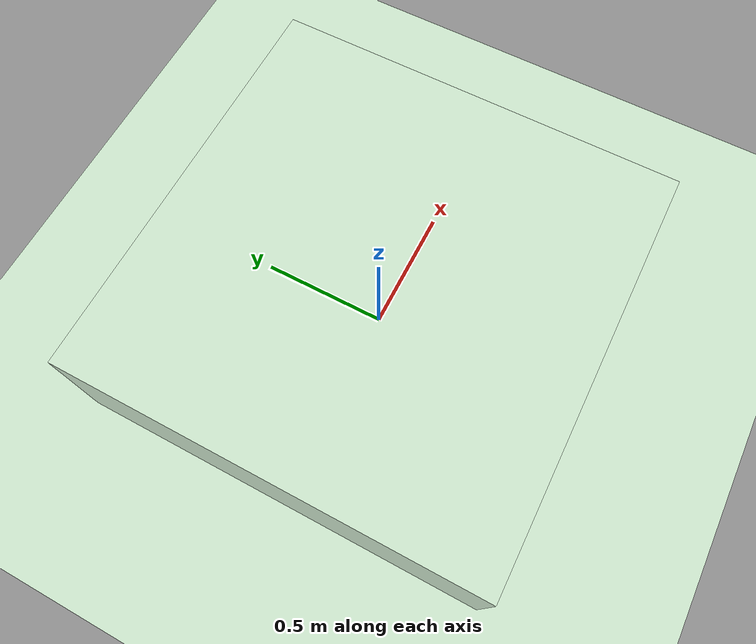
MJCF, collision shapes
<?xml version="1.0" encoding="utf-8"?>
<mujoco>
    <compiler angle="radian" coordinate="local"/>
    <option timestep="0.002" iterations="20" apirate="200">
        <flag warmstart="enable"/>
    </option>

    <size njmax="500" nconmax="100" nuser_jnt="1" nuser_site="1" nuser_tendon="1" nuser_sensor="1" nuser_actuator="16"
          nstack="600000"/>

    <visual>
        <map fogstart="3" fogend="5" force="0.1"></map>
        <quality shadowsize="4096"></quality>
    </visual>

    <default>
        <default class="robot0:asset_class">
            <geom friction="1 0.005 0.001" condim="4" margin="0.0005" contype="1" conaffinity="1"></geom>
            <joint limited="true" damping="0.1" armature="0.001" margin="0.01" frictionloss="0.001"></joint>
            <site size="0.005" rgba="0.4 0.9 0.4 1"></site>
            <general ctrllimited="true" forcelimited="true"></general>
        </default>
        <default class="robot0:D_Touch">
            <site type="box" size="0.009 0.004 0.013" pos="0 -0.004 0.018" rgba="0.8 0.8 0.8 0.15" group="4"></site>
        </default>
        <default class="robot0:DC_Hand">
            <geom material="robot0:MatColl" contype="1" conaffinity="0" group="2"></geom>
        </default>
        <default class="robot0:D_Vizual">
            <geom material="robot0:MatViz" contype="0" conaffinity="0" group="1" type="mesh"></geom>
        </default>
        <default class="robot0:free">
            <joint type="free" damping="0" armature="0" limited="false"></joint>
        </default>
        <default class="robot1:asset_class">
            <geom contype="0" conaffinity="0"></geom>
        </default>
        <default class="robot1:DC_Hand">
            <geom material="robot1:MatColl" contype="0" conaffinity="0" group="2"></geom>
        </default>
        <default class="robot1:D_Vizual">
            <geom material="robot1:MatViz" contype="0" conaffinity="0" group="1" type="mesh"></geom>
        </default>
        <default class="robot1:free">
            <joint type="free" damping="0" armature="0" limited="false"></joint>
        </default>
        <default class="robot2:asset_class">
            <geom contype="0" conaffinity="0"></geom>
        </default>
        <default class="robot2:DC_Hand">
            <geom material="robot2:MatColl" contype="0" conaffinity="0" group="2"></geom>
        </default>
        <default class="robot2:D_Vizual">
            <geom material="robot2:MatViz" contype="0" conaffinity="0" group="1" type="mesh"></geom>
        </default>
        <default class="robot2:free">
            <joint type="free" damping="0" armature="0" limited="false"></joint>
        </default>
    </default>

    <contact>
        <pair geom1="robot0:C_FF1" geom2="robot0:C_TH1" condim="1"></pair>
        <pair geom1="robot0:C_FF2" geom2="robot0:C_TH1" condim="1"></pair>
        <pair geom1="robot0:C_FF3" geom2="robot0:C_TH1" condim="1"></pair>
        <pair geom1="robot0:C_MF3" geom2="robot0:C_TH1" condim="1"></pair>
        <pair geom1="robot0:C_MF1" geom2="robot0:C_TH1" condim="1"></pair>
        <pair geom1="robot0:C_RF1" geom2="robot0:C_TH1" condim="1"></pair>
        <pair geom1="robot0:C_LF1" geom2="robot0:C_TH1" condim="1"></pair>
        <pair geom1="robot0:C_palm0" geom2="robot0:C_TH1" condim="1"></pair>
        <pair geom1="robot0:C_MF1" geom2="robot0:C_FF1" condim="1"></pair>
        <pair geom1="robot0:C_RF1" geom2="robot0:C_MF1" condim="1"></pair>
        <pair geom1="robot0:C_LF1" geom2="robot0:C_RF1" condim="1"></pair>
        <pair geom1="robot0:C_MF3" geom2="robot0:C_FF3" condim="1"></pair>
        <pair geom1="robot0:C_RF3" geom2="robot0:C_MF3" condim="1"></pair>
        <pair geom1="robot0:C_LF3" geom2="robot0:C_RF3" condim="1"></pair>
        <pair geom1="robot0:C_LF1" geom2="robot0:C_RF1" condim="1"></pair>
        <pair geom1="robot0:C_LF1" geom2="robot0:C_MF1" condim="1"></pair>
        <pair geom1="robot0:C_LF1" geom2="robot0:C_RF2" condim="1"></pair>
        <pair geom1="robot0:C_LF2" geom2="robot0:C_RF1" condim="1"></pair>
        <pair geom1="robot0:C_LF2" geom2="robot0:C_RF2" condim="1"></pair>
    </contact>

    <actuator>
        <motor gear="1" name="robot0:A_slide0" joint="robot0:slide0"></motor>
        <motor gear="1" name="robot0:A_slide1" joint="robot0:slide1"></motor>
        <motor gear="1" name="robot0:A_slide2" joint="robot0:slide2"></motor>
        <motor gear="1" name="robot0:A_WRJ0" user="2036" joint="robot0:WRJ0"></motor>
        <motor gear="1" name="robot0:A_WRJ1" user="2038" joint="robot0:WRJ1"></motor>
        <motor gear="1" name="robot0:A_WRJ2" user="1984" joint="robot0:WRJ2"></motor>
        <motor gear="1" name="robot0:A_FFJ3y" user="2004" joint="robot0:FFJ3y"></motor>
        <motor gear="1" name="robot0:A_FFJ3z" user="2004" joint="robot0:FFJ3z"></motor>
        <motor gear="1" name="robot0:A_FFJ2z" user="2004" joint="robot0:FFJ2z"></motor>
        <motor gear="1" name="robot0:A_FFJ1z" user="2004" joint="robot0:FFJ1z"></motor>
        <motor gear="1" name="robot0:A_MFJ3y" user="2004" joint="robot0:MFJ3y"></motor>
        <motor gear="1" name="robot0:A_MFJ3z" user="2004" joint="robot0:MFJ3z"></motor>
        <motor gear="1" name="robot0:A_MFJ2z" user="2004" joint="robot0:MFJ2z"></motor>
        <motor gear="1" name="robot0:A_MFJ1z" user="2004" joint="robot0:MFJ1z"></motor>
        <motor gear="1" name="robot0:A_LFJ3y" user="2004" joint="robot0:LFJ3y"></motor>
        <motor gear="1" name="robot0:A_LFJ3z" user="2004" joint="robot0:LFJ3z"></motor>
        <motor gear="1" name="robot0:A_LFJ2z" user="2004" joint="robot0:LFJ2z"></motor>
        <motor gear="1" name="robot0:A_LFJ1z" user="2004" joint="robot0:LFJ1z"></motor>
        <motor gear="1" name="robot0:A_RFJ3y" user="2004" joint="robot0:RFJ3y"></motor>
        <motor gear="1" name="robot0:A_RFJ3z" user="2004" joint="robot0:RFJ3z"></motor>
        <motor gear="1" name="robot0:A_RFJ2z" user="2004" joint="robot0:RFJ2z"></motor>
        <motor gear="1" name="robot0:A_RFJ1z" user="2004" joint="robot0:RFJ1z"></motor>
        <motor gear="1" name="robot0:A_THJ3x" user="2004" joint="robot0:THJ3x"></motor>
        <motor gear="1" name="robot0:A_THJ3y" user="2004" joint="robot0:THJ3y"></motor>
        <motor gear="1" name="robot0:A_THJ3z" user="2004" joint="robot0:THJ3z"></motor>
        <motor gear="1" name="robot0:A_THJ2x" user="2004" joint="robot0:THJ2x"></motor>
        <motor gear="1" name="robot0:A_THJ2y" user="2004" joint="robot0:THJ2y"></motor>
        <motor gear="1" name="robot0:A_THJ2z" user="2004" joint="robot0:THJ2z"></motor>
        <motor gear="1" name="robot0:A_THJ1y" user="2004" joint="robot0:THJ1y"></motor>

    </actuator>

    <asset>
        <texture type="skybox" builtin="gradient" rgb1="0.44 0.85 0.56" rgb2="0.46 0.87 0.58" width="32" height="32"/>

        <texture name="robot0:texplane" type="2d" builtin="checker" rgb1="0.2 0.3 0.4" rgb2="0.1 0.15 0.2" width="512"
                 height="512"/>
        <texture name="robot0:texgeom" type="cube" builtin="flat" mark="cross" width="127" height="127" rgb1="0.3 0.6 0.5"
                 rgb2="0.3 0.6 0.5" markrgb="0 0 0" random="0.01"/>

        <material name="robot0:MatGnd" reflectance="0.5" texture="robot0:texplane" texrepeat="1 1" texuniform="true"/>
        <material name="robot0:MatColl" specular="1" shininess="0.3" reflectance="0.5" rgba="0.4 0.5 0.6 1"/>
        <material name="robot0:MatViz" specular="0.75" shininess="0.1" reflectance="0.5" rgba="0.93 0.93 0.93 1"/>
        <material name="robot1:MatGnd" reflectance="0.5" texture="robot0:texplane" texrepeat="1 1" texuniform="true"/>
        <material name="robot1:MatColl" specular="1" shininess="0.3" reflectance="0.5" rgba="1.0 0.1 0.1 1"/>
        <material name="robot1:MatViz" specular="0.75" shininess="0.1" reflectance="0.5" rgba="1.0 0.1 0.1 1"/>
        <material name="robot2:MatGnd" reflectance="0.5" texture="robot0:texplane" texrepeat="1 1" texuniform="true"/>
        <material name="robot2:MatColl" specular="1" shininess="0.3" reflectance="0.5" rgba="0.1 0.1 1.0 1"/>
        <material name="robot2:MatViz" specular="0.75" shininess="0.1" reflectance="0.5" rgba="0.1 0.1 1.0 1"/>
        <material name="robot0:object" texture="robot0:texgeom" texuniform="false"/>
        <material name="floor_mat" specular="0" shininess="0.5" reflectance="0" rgba="0.2 0.2 0.2 0"/>
        <material name="MatPlane" reflectance="0.0" shininess="1" specular="1" texrepeat="60 60" texture="robot0:texplane"/>

        <mesh name="palm" file="../stls/manohand/palm_mean.stl"/>
        <mesh name="ffdist" file="../stls/manohand/ffdist_mean.stl"/>
        <mesh name="ffmiddle" file="../stls/manohand/ffmiddle_mean.stl"/>
        <mesh name="ffprox" file="../stls/manohand/ffprox_mean.stl"/>
        <mesh name="lfdist" file="../stls/manohand/lfdist_mean.stl"/>
        <mesh name="lfmiddle" file="../stls/manohand/lfmiddle_mean.stl"/>
        <mesh name="lfprox" file="../stls/manohand/lfprox_mean.stl"/>
        <mesh name="mfdist" file="../stls/manohand/mfdist_mean.stl"/>
        <mesh name="mfmiddle" file="../stls/manohand/mfmiddle_mean.stl"/>
        <mesh name="mfprox" file="../stls/manohand/mfprox_mean.stl"/>
        <mesh name="rfdist" file="../stls/manohand/rfdist_mean.stl"/>
        <mesh name="rfmiddle" file="../stls/manohand/rfmiddle_mean.stl"/>
        <mesh name="rfprox" file="../stls/manohand/rfprox_mean.stl"/>
        <mesh name="thdist" file="../stls/manohand/thdist_mean.stl"/>
        <mesh name="thmiddle" file="../stls/manohand/thmiddle_mean.stl"/>
        <mesh name="thprox" file="../stls/manohand/thprox_mean.stl"/>
    </asset>

    <worldbody>
        <geom conaffinity="1" condim="3" name="floor" pos="0 0 0" rgba="0.8 0.9 0.8 1" size="100 100 .2" type="plane" material="MatPlane"/>
        <body name="table">
            <geom name="C_Table" type="box" size="0.8 0.8 0.25" rgba="0.8 0.9 0.8 0.3" pos="0 0 0.25" condim="4" contype="1" conaffinity="0" />
        </body>
        <body name="handworld" pos="0 0 0" euler="0 0 0">
            <body name="palm" pos="0 0 0" euler="0 0 0" childclass="robot0:asset_class">
                <joint name="robot0:slide0" type="slide" pos="0 0 0" axis="1 0 0" range="-2.0 2.0" armature="0.005"></joint>
                <joint name="robot0:slide1" type="slide" pos="0 0 0" axis="0 1 0" range="-2.0 2.0" armature="0.005"></joint>
                <joint name="robot0:slide2" type="slide" pos="0 0 0" axis="0 0 1" range="0.2 2.0" armature="0.005"></joint>
                <joint name="robot0:WRJ0" type="hinge" pos="0 0 0" axis="1 0 0" range="-3.14 3.14" armature="0.005" user="1123"></joint>
                <joint name="robot0:WRJ1" type="hinge" pos="0 0 0" axis="0 1 0" range="-1.57 1.57" armature="0.005" user="1123"></joint>
                <joint name="robot0:WRJ2" type="hinge" pos="0 0 0" axis="0 0 1" range="-3.14 3.14" armature="0.005" user="1123"></joint>
                <inertial pos="-0.03 0 0" euler="0 0 0.2" mass="0.3" diaginertia="0.001 0.001 0.001"/>
                <geom class="robot0:D_Vizual" name="robot0:V_palm" mesh="palm"></geom>
                <geom class="robot0:DC_Hand" name="robot0:C_palm0" type="box" pos="-0.03 0 0" size="0.0439 0.0135 0.035" euler="0 0 0.2"></geom>
                <geom class="robot0:DC_Hand" name="robot0:C_palm1" type="capsule" euler="-2.61505 0.70030 -1.87000" pos="-0.01187 -0.00708 0.01218" size="0.015 0.01842"></geom>
                <body name="link_ff_pm" pos="-0.0880972 -0.00520036 0.020686">
                    <joint name="robot0:FFJ3y" type="hinge" pos="0 0 0" axis="0 1 0" range="-0.8 0.8" armature="0.005" user="1123"></joint>
                    <joint name="robot0:FFJ3z" type="hinge" pos="0 0 0" axis="0 0 1" range="0 1.57" armature="0.005" user="1123"></joint>
                    <inertial pos="-0.01633945  0.00200468  0.0011085" euler="2.0759187  1.43150624 1.94972864" mass="0.014" diaginertia="1e-05 1e-05 1e-05"></inertial>
                    <geom class="robot0:D_Vizual" name="robot0:V_FF3" mesh="ffprox"></geom>
                    <geom class="robot0:DC_Hand" name="robot0:C_FF3" type="capsule" pos="-0.01633945  0.00200468  0.0011085" size="0.009 0.0165" euler="2.0759187  1.43150624 1.94972864"></geom>
                    <body name="link_ff_md" pos="-0.0326789 0.00400935 0.00221706">
                        <inertial pos="-1.10779554e-02 -6.49210764e-04 -5.70546836e-05" euler="-1.48313839 1.51203433 -1.42475203" mass="0.012" diaginertia="1e-05 1e-05 1e-05"></inertial>
                        <joint name="robot0:FFJ2z" type="hinge" pos="0 0 0" axis="0 0 1" range="-0.5 1.57" armature="0.005" user="1123"></joint>
                        <geom class="robot0:D_Vizual" name="robot0:V_FF2" mesh="ffmiddle"></geom>
                        <geom class="robot0:DC_Hand" name="robot0:C_FF2" type="capsule" pos="-1.10779554e-02 -6.49210764e-04 -5.70546836e-05" size="0.0075 0.0111" euler="-1.48313839 1.51203433 -1.42475203"></geom>
                        <body name="link_ff_dd" pos="-0.0221559 -0.00129842 -0.000114109">
                            <inertial pos="-0.01163138  0.00035898  0.00202463" euler="2.96610898 1.39582282 2.93259132" mass="0.01" diaginertia="1e-05 1e-05 1e-05"></inertial>
                            <joint name="robot0:FFJ1z" type="hinge" pos="0 0 0" axis="0 0 1" range="0 1.57" armature="0.005" user="1123"></joint>
                            <geom class="robot0:D_Vizual" name="robot0:V_FF1" mesh="ffdist"></geom>
                            <geom class="robot0:DC_Hand" name="robot0:C_FF1" type="capsule" pos="-0.01163138  0.00035898  0.00202463" size="0.0075 0.0075" euler="2.96610898 1.39582282 2.93259132"></geom>
                        </body>
                    </body>
                </body>
                <body name="link_mf_pm" pos="-0.0946604 -0.00147896 -0.00335754">
                    <inertial pos="-0.01559134  0.00093066 -0.00279725" euler="0.32118629 1.38392244 0.26686409" mass="0.014" diaginertia="1e-05 1e-05 1e-05"></inertial>
                    <joint name="robot0:MFJ3y" type="hinge" pos="0 0 0" axis="0 1 0" range="-0.8 0.8" armature="0.005" user="1123"></joint>
                    <joint name="robot0:MFJ3z" type="hinge" pos="0 0 0" axis="0 0 1" range="0 1.57" armature="0.005" user="1123"></joint>
                    <geom class="robot0:D_Vizual" name="robot0:V_MF3" mesh="mfprox"></geom>
                    <geom class="robot0:DC_Hand" name="robot0:C_MF3" type="capsule" pos="-0.01559134  0.00093066 -0.00279725" size="0.009 0.0158675" euler="0.32118629 1.38392244 0.26686409"></geom>
                    <body name="link_mf_md" pos="-0.0311827 0.00186133 -0.00559451">
                        <inertial pos="-0.01145232 -0.00062605 -0.001972263" euler="-0.30736925 1.39204219 -0.25742004" mass="0.012" diaginertia="1e-05 1e-05 1e-05"></inertial>
                        <joint name="robot0:MFJ2z" type="hinge" pos="0 0 0" axis="0 0 1" range="0 1.57" armature="0.005" user="1123"></joint>
                        <geom class="robot0:D_Vizual" name="robot0:V_MF2" mesh="mfmiddle"></geom>
                        <geom class="robot0:DC_Hand" name="robot0:C_MF2" type="capsule" pos="-0.01145232 -0.00062605 -0.001972263" size="0.0075 0.01163" euler="-0.30736925 1.39204219 -0.25742004"></geom>
                        <body name="link_mf_dd" pos="-0.0229046 -0.0012521 -0.00394452">
                            <inertial pos="-0.01551503 -0.00070755 -0.00318577" euler="-0.21855015 1.36348088  -0.17760409" mass="0.01" diaginertia="1e-05 1e-05 1e-05"></inertial>
                            <joint name="robot0:MFJ1z" type="hinge" pos="0 0 0" axis="0 0 1" range="0 1.57" armature="0.005" user="1123"></joint>
                            <geom class="robot0:D_Vizual" name="robot0:V_MF1" mesh="mfdist"></geom>
                            <geom class="robot0:DC_Hand" name="robot0:C_MF1" type="capsule" pos="-0.01551503 -0.00070755 -0.00318577" size="0.0075 0.005" euler="-0.21855015 1.36348088  -0.17760409"></geom>
                        </body>
                    </body>
                </body>
                <body name="link_lf_pm" pos="-0.0687869 -0.00994033 -0.0432093">
                    <joint name="robot0:LFJ3y" type="hinge" pos="0 0 0" axis="0 1 0" range="-0.8 0.8" armature="0.005" user="1123"></joint>
                    <inertial pos="-8.50720331e-03  3.09124589e-05 -6.24939241e-03" euler="0.00494643 0.93721839 0.00250398" mass="0.07" diaginertia="0.0005 0.0005 0.0005"/>
                    <joint name="robot0:LFJ3z" type="hinge" pos="0 0 0" axis="0 0 1" range="0 1.57" armature="0.005" user="1123"></joint>
                    <geom class="robot0:D_Vizual" name="robot0:V_LF3" mesh="lfprox"></geom>
                    <geom class="robot0:DC_Hand" name="robot0:C_LF3" type="capsule" pos="-8.50720331e-03  3.09124589e-05 -6.24939241e-03" size="0.009 0.010555964" euler="0.00494643 0.93721839 0.00250398"></geom>
                    <body name="link_lf_md" pos="-0.0170144 6.18249e-05 -0.0124988">
                        <inertial pos="-0.00793345 -0.00034558 -0.00516596" euler="-0.06679566 0.99258405 -0.0361792" mass="0.06" diaginertia="0.0005 0.0005 0.0005"/>
                        <joint name="robot0:LFJ2z" type="hinge" pos="0 0 0" axis="0 0 1" range="0 1.57" armature="0.005" user="1123"></joint>
                        <geom class="robot0:D_Vizual" name="robot0:V_LF2" mesh="lfmiddle"></geom>
                        <geom class="robot0:DC_Hand" name="robot0:C_LF2" type="capsule" pos="-0.00793345 -0.00034558 -0.00516596" size="0.0075 0.009473446" euler="-0.06679566 0.99258405 -0.0361792"></geom>
                        <body name="link_lf_dd" pos="-0.0158669 -0.000691155 -0.0103319">
                            <inertial pos="-0.00977975  0.00129545 -0.00574058" euler="0.22194785 1.02909336 0.12582808" mass="0.05" diaginertia="0.0005 0.0005 0.0005"/>
                            <joint name="robot0:LFJ1z" type="hinge" pos="0 0 0" axis="0 0 1" range="0 1.57" armature="0.005" user="1123"></joint>
                            <geom class="robot0:D_Vizual" name="robot0:V_LF1" mesh="lfdist"></geom>
                            <geom class="robot0:DC_Hand" name="robot0:C_LF1" type="capsule" pos="-0.00977975  0.00129545 -0.00574058" size="0.0065 0.0035" euler="0.22194785 1.02909336 0.12582808"></geom>
                        </body>
                    </body>
                </body>
                <body name="link_rf_pm" pos="-0.0817355 -0.00395742 -0.0266732">
                    <joint name="robot0:RFJ3y" type="hinge" pos="0 0 0" axis="0 1 0" range="-0.8 0.8" armature="0.005" user="1123"></joint>
                    <inertial pos="-0.01415714  0.0010335  -0.00254927" euler="0.38516311 1.37888284 0.31878467" mass="0.014" diaginertia="1e-05 1e-05 1e-05"></inertial>
                    <joint name="robot0:RFJ3z" type="hinge" pos="0 0 0" axis="0 0 1" range="0 1.57" armature="0.005" user="1123"></joint>
                    <geom class="robot0:D_Vizual" name="robot0:V_RF3" mesh="rfprox"></geom>
                    <geom class="robot0:DC_Hand" name="robot0:C_RF3" type="capsule" pos="-0.01415714  0.0010335  -0.00254927" size="0.009 0.014421906" euler="0.38516311 1.37888284 0.31878467"></geom>
                    <body name="link_rf_md" pos="-0.0283143 0.00206701 -0.00509854">
                        <inertial pos="-0.01176025 -0.00084406 -0.00381691" euler="-0.21763357 1.24988512 -0.15729772" mass="0.012" diaginertia="1e-05 1e-05 1e-05"></inertial>
                        <joint name="robot0:RFJ2z" type="hinge" pos="0 0 0" axis="0 0 1" range="0 1.57" armature="0.005" user="1123"></joint>
                        <geom class="robot0:D_Vizual" name="robot0:V_RF2" mesh="rfmiddle"></geom>
                        <geom class="robot0:DC_Hand" name="robot0:C_RF2" type="capsule" pos="-0.01176025 -0.00084406 -0.00381691" size="0.0075 0.012392933" euler="-0.21763357 1.24988512 -0.15729772"></geom>
                        <body name="link_rf_dd" pos="-0.0235205 -0.00168811 -0.00763382">
                            <inertial pos="-0.01460212  0.00187106 -0.00404494" euler="0.43325752 1.27456581 0.32302802" mass="0.01" diaginertia="1e-05 1e-05 1e-05"></inertial>
                            <joint name="robot0:RFJ1z" type="hinge" pos="0 0 0" axis="0 0 1" range="0 1.57" armature="0.005" user="1123"></joint>
                            <geom class="robot0:D_Vizual" name="robot0:V_RF1" mesh="rfdist"></geom>
                            <geom class="robot0:DC_Hand" name="robot0:C_RF1" type="capsule" pos="-0.01460212  0.00187106 -0.00404494" size="0.0075 0.005" euler="0.43325752 1.27456581 0.32302802"></geom>
                        </body>
                    </body>
                </body>
                <body name="link_th_pm" pos="-0.0240897 -0.0155223 0.0258128">
                    <joint name="robot0:THJ3x" type="hinge" pos="0 0 0" axis="1 0 0" range="0 1.57" armature="0.005" user="1123"></joint>
                    <joint name="robot0:THJ3y" type="hinge" pos="0 0 0" axis="0 1 0" range="-0.8 0.8" armature="0.005" user="1123"></joint>
                    <inertial pos="-0.00981662  0.00044564  0.01184977" euler="3.10400265 0.69148607 3.03731965" mass="0.016" diaginertia="1e-05 1e-05 1e-05"></inertial>
                    <joint name="robot0:THJ3z" type="hinge" pos="0 0 0" axis="0 0 1" range="-0.25 0.25" armature="0.005" user="1123"></joint>
                    <geom class="robot0:D_Vizual" name="robot0:V_TH3" mesh="thprox"></geom>
                    <geom class="robot0:DC_Hand" name="robot0:C_TH3" type="capsule" pos="-0.00981662  0.00044564  0.01184977" size="0.01 0.015394214" euler="3.10400265 0.69148607 3.03731965"></geom>
                    <body name="link_th_md" pos="-0.0196332 0.000891286 0.0236995">
                        <joint name="robot0:THJ2x" type="hinge" pos="0 0 0" axis="1 0 0" range="-1 1" armature="0.005" user="1123"></joint>
                        <joint name="robot0:THJ2y" type="hinge" pos="0 0 0" axis="0 1 0" range="-0.5 0.5" armature="0.005" user="1123"></joint>
                        <inertial pos="-0.01110887 -0.00271648  0.00726206" euler="-2.78364168 0.96144328  -2.47379542" mass="0.014" diaginertia="1e-05 1e-05 1e-05"></inertial>
                        <joint name="robot0:THJ2z" type="hinge" pos="0 0 0" axis="0 0 1" range="-0.5 0.5" armature="0.005" user="1123"></joint>
                        <geom class="robot0:D_Vizual" name="robot0:V_TH2" mesh="thmiddle"></geom>
                        <geom class="robot0:DC_Hand" name="robot0:C_TH2" type="capsule" pos="-0.01110887 -0.00271648  0.00726206" size="0.01 0.013547092" euler="-2.78364168 0.96144328  -2.47379542"></geom>
                        <body name="link_th_dd" pos="-0.0222177 -0.00543297 0.0145241">
                            <joint name="robot0:THJ1y" type="hinge" pos="0 0 0" axis="0 1 0" range="-1 1" armature="0.005" user="1123"></joint>
                            <inertial pos="-0.01577465 -0.00326327  0.01024323" euler="-2.83317999 0.97259243  -2.56963586" mass="0.012" diaginertia="1e-05 1e-05 1e-05"></inertial>
                            <geom class="robot0:D_Vizual" name="robot0:V_TH1" mesh="thdist"></geom>
                            <geom class="robot0:DC_Hand" name="robot0:C_TH1" type="capsule" pos="-0.01577465 -0.00326327  0.01024323" size="0.01 0.01" euler="-2.83317999 0.97259243  -2.56963586"></geom>
                        </body>
                    </body>
                </body>
            </body>
        </body>
        <body name="handworld1" pos="0 0 0" euler="0 0 0">
            <body name="palm1" pos="0 0 0" euler="0 0 0" childclass="robot1:asset_class">
                <joint name="robot1:slide0" type="slide" pos="0 0 0" axis="1 0 0" range="-2.0 2.0" armature="0.005"></joint>
                <joint name="robot1:slide1" type="slide" pos="0 0 0" axis="0 1 0" range="-2.0 2.0" armature="0.005"></joint>
                <joint name="robot1:slide2" type="slide" pos="0 0 0" axis="0 0 1" range="0.2 2.0" armature="0.005"></joint>
                <joint name="robot1:WRJ0" type="hinge" pos="0 0 0" axis="1 0 0" range="-3.14 3.14" armature="0.005" user="1123"></joint>
                <joint name="robot1:WRJ1" type="hinge" pos="0 0 0" axis="0 1 0" range="-1.57 1.57" armature="0.005" user="1123"></joint>
                <joint name="robot1:WRJ2" type="hinge" pos="0 0 0" axis="0 0 1" range="-3.14 3.14" armature="0.005" user="1123"></joint>
                <inertial pos="-0.03 0 0" euler="0 0 0.2" mass="0.3" diaginertia="0.001 0.001 0.001"/>
                <geom class="robot1:D_Vizual" name="robot1:V_palm" mesh="palm"></geom>
                <geom class="robot1:DC_Hand" name="robot1:C_palm0" type="box" pos="-0.03 0 0" size="0.0439 0.0135 0.035" euler="0 0 0.2"></geom>
                <geom class="robot1:DC_Hand" name="robot1:C_palm1" type="capsule" euler="-2.61505 0.70030 -1.87000" pos="-0.01187 -0.00708 0.01218" size="0.015 0.01842"></geom>
                <body name="link_ff_pm1" pos="-0.0880972 -0.00520036 0.020686">
                    <joint name="robot1:FFJ3y" type="hinge" pos="0 0 0" axis="0 1 0" range="-0.8 0.8" armature="0.005" user="1123"></joint>
                    <joint name="robot1:FFJ3z" type="hinge" pos="0 0 0" axis="0 0 1" range="0 1.57" armature="0.005" user="1123"></joint>
                    <inertial pos="-0.01633945  0.00200468  0.0011085" euler="2.0759187  1.43150624 1.94972864" mass="0.014" diaginertia="1e-05 1e-05 1e-05"></inertial>
                    <geom class="robot1:D_Vizual" name="robot1:V_FF3" mesh="ffprox"></geom>
                    <geom class="robot1:DC_Hand" name="robot1:C_FF3" type="capsule" pos="-0.01633945  0.00200468  0.0011085" size="0.009 0.0165" euler="2.0759187  1.43150624 1.94972864"></geom>
                    <body name="link_ff_md1" pos="-0.0326789 0.00400935 0.00221706">
                        <inertial pos="-1.10779554e-02 -6.49210764e-04 -5.70546836e-05" euler="-1.48313839 1.51203433 -1.42475203" mass="0.012" diaginertia="1e-05 1e-05 1e-05"></inertial>
                        <joint name="robot1:FFJ2z" type="hinge" pos="0 0 0" axis="0 0 1" range="-0.5 1.57" armature="0.005" user="1123"></joint>
                        <geom class="robot1:D_Vizual" name="robot1:V_FF2" mesh="ffmiddle"></geom>
                        <geom class="robot1:DC_Hand" name="robot1:C_FF2" type="capsule" pos="-1.10779554e-02 -6.49210764e-04 -5.70546836e-05" size="0.0075 0.0111" euler="-1.48313839 1.51203433 -1.42475203"></geom>
                        <body name="link_ff_dd1" pos="-0.0221559 -0.00129842 -0.000114109">
                            <inertial pos="-0.01163138  0.00035898  0.00202463" euler="2.96610898 1.39582282 2.93259132" mass="0.01" diaginertia="1e-05 1e-05 1e-05"></inertial>
                            <joint name="robot1:FFJ1z" type="hinge" pos="0 0 0" axis="0 0 1" range="0 1.57" armature="0.005" user="1123"></joint>
                            <geom class="robot1:D_Vizual" name="robot1:V_FF1" mesh="ffdist"></geom>
                            <geom class="robot1:DC_Hand" name="robot1:C_FF1" type="capsule" pos="-0.01163138  0.00035898  0.00202463" size="0.0075 0.0075" euler="2.96610898 1.39582282 2.93259132"></geom>
                        </body>
                    </body>
                </body>
                <body name="link_mf_pm1" pos="-0.0946604 -0.00147896 -0.00335754">
                    <inertial pos="-0.01559134  0.00093066 -0.00279725" euler="0.32118629 1.38392244 0.26686409" mass="0.014" diaginertia="1e-05 1e-05 1e-05"></inertial>
                    <joint name="robot1:MFJ3y" type="hinge" pos="0 0 0" axis="0 1 0" range="-0.8 0.8" armature="0.005" user="1123"></joint>
                    <joint name="robot1:MFJ3z" type="hinge" pos="0 0 0" axis="0 0 1" range="0 1.57" armature="0.005" user="1123"></joint>
                    <geom class="robot1:D_Vizual" name="robot1:V_MF3" mesh="mfprox"></geom>
                    <geom class="robot1:DC_Hand" name="robot1:C_MF3" type="capsule" pos="-0.01559134  0.00093066 -0.00279725" size="0.009 0.0158675" euler="0.32118629 1.38392244 0.26686409"></geom>
                    <body name="link_mf_md1" pos="-0.0311827 0.00186133 -0.00559451">
                        <inertial pos="-0.01145232 -0.00062605 -0.001972263" euler="-0.30736925 1.39204219 -0.25742004" mass="0.012" diaginertia="1e-05 1e-05 1e-05"></inertial>
                        <joint name="robot1:MFJ2z" type="hinge" pos="0 0 0" axis="0 0 1" range="0 1.57" armature="0.005" user="1123"></joint>
                        <geom class="robot1:D_Vizual" name="robot1:V_MF2" mesh="mfmiddle"></geom>
                        <geom class="robot1:DC_Hand" name="robot1:C_MF2" type="capsule" pos="-0.01145232 -0.00062605 -0.001972263" size="0.0075 0.01163" euler="-0.30736925 1.39204219 -0.25742004"></geom>
                        <body name="link_mf_dd1" pos="-0.0229046 -0.0012521 -0.00394452">
                            <inertial pos="-0.01551503 -0.00070755 -0.00318577" euler="-0.21855015 1.36348088  -0.17760409" mass="0.01" diaginertia="1e-05 1e-05 1e-05"></inertial>
                            <joint name="robot1:MFJ1z" type="hinge" pos="0 0 0" axis="0 0 1" range="0 1.57" armature="0.005" user="1123"></joint>
                            <geom class="robot1:D_Vizual" name="robot1:V_MF1" mesh="mfdist"></geom>
                            <geom class="robot1:DC_Hand" name="robot1:C_MF1" type="capsule" pos="-0.01551503 -0.00070755 -0.00318577" size="0.0075 0.005" euler="-0.21855015 1.36348088  -0.17760409"></geom>
                        </body>
                    </body>
                </body>
                <body name="link_lf_pm1" pos="-0.0687869 -0.00994033 -0.0432093">
                    <joint name="robot1:LFJ3y" type="hinge" pos="0 0 0" axis="0 1 0" range="-0.8 0.8" armature="0.005" user="1123"></joint>
                    <inertial pos="-8.50720331e-03  3.09124589e-05 -6.24939241e-03" euler="0.00494643 0.93721839 0.00250398" mass="0.07" diaginertia="0.0005 0.0005 0.0005"/>
                    <joint name="robot1:LFJ3z" type="hinge" pos="0 0 0" axis="0 0 1" range="0 1.57" armature="0.005" user="1123"></joint>
                    <geom class="robot1:D_Vizual" name="robot1:V_LF3" mesh="lfprox"></geom>
                    <geom class="robot1:DC_Hand" name="robot1:C_LF3" type="capsule" pos="-8.50720331e-03  3.09124589e-05 -6.24939241e-03" size="0.009 0.010555964" euler="0.00494643 0.93721839 0.00250398"></geom>
                    <body name="link_lf_md1" pos="-0.0170144 6.18249e-05 -0.0124988">
                        <inertial pos="-0.00793345 -0.00034558 -0.00516596" euler="-0.06679566 0.99258405 -0.0361792" mass="0.06" diaginertia="0.0005 0.0005 0.0005"/>
                        <joint name="robot1:LFJ2z" type="hinge" pos="0 0 0" axis="0 0 1" range="0 1.57" armature="0.005" user="1123"></joint>
                        <geom class="robot1:D_Vizual" name="robot1:V_LF2" mesh="lfmiddle"></geom>
                        <geom class="robot1:DC_Hand" name="robot1:C_LF2" type="capsule" pos="-0.00793345 -0.00034558 -0.00516596" size="0.0075 0.009473446" euler="-0.06679566 0.99258405 -0.0361792"></geom>
                        <body name="link_lf_dd1" pos="-0.0158669 -0.000691155 -0.0103319">
                            <inertial pos="-0.00977975  0.00129545 -0.00574058" euler="0.22194785 1.02909336 0.12582808" mass="0.05" diaginertia="0.0005 0.0005 0.0005"/>
                            <joint name="robot1:LFJ1z" type="hinge" pos="0 0 0" axis="0 0 1" range="0 1.57" armature="0.005" user="1123"></joint>
                            <geom class="robot1:D_Vizual" name="robot1:V_LF1" mesh="lfdist"></geom>
                            <geom class="robot1:DC_Hand" name="robot1:C_LF1" type="capsule" pos="-0.00977975  0.00129545 -0.00574058" size="0.0065 0.0035" euler="0.22194785 1.02909336 0.12582808"></geom>
                        </body>
                    </body>
                </body>
                <body name="link_rf_pm1" pos="-0.0817355 -0.00395742 -0.0266732">
                    <joint name="robot1:RFJ3y" type="hinge" pos="0 0 0" axis="0 1 0" range="-0.8 0.8" armature="0.005" user="1123"></joint>
                    <inertial pos="-0.01415714  0.0010335  -0.00254927" euler="0.38516311 1.37888284 0.31878467" mass="0.014" diaginertia="1e-05 1e-05 1e-05"></inertial>
                    <joint name="robot1:RFJ3z" type="hinge" pos="0 0 0" axis="0 0 1" range="0 1.57" armature="0.005" user="1123"></joint>
                    <geom class="robot1:D_Vizual" name="robot1:V_RF3" mesh="rfprox"></geom>
                    <geom class="robot1:DC_Hand" name="robot1:C_RF3" type="capsule" pos="-0.01415714  0.0010335  -0.00254927" size="0.009 0.014421906" euler="0.38516311 1.37888284 0.31878467"></geom>
                    <body name="link_rf_md1" pos="-0.0283143 0.00206701 -0.00509854">
                        <inertial pos="-0.01176025 -0.00084406 -0.00381691" euler="-0.21763357 1.24988512 -0.15729772" mass="0.012" diaginertia="1e-05 1e-05 1e-05"></inertial>
                        <joint name="robot1:RFJ2z" type="hinge" pos="0 0 0" axis="0 0 1" range="0 1.57" armature="0.005" user="1123"></joint>
                        <geom class="robot1:D_Vizual" name="robot1:V_RF2" mesh="rfmiddle"></geom>
                        <geom class="robot1:DC_Hand" name="robot1:C_RF2" type="capsule" pos="-0.01176025 -0.00084406 -0.00381691" size="0.0075 0.012392933" euler="-0.21763357 1.24988512 -0.15729772"></geom>
                        <body name="link_rf_dd1" pos="-0.0235205 -0.00168811 -0.00763382">
                            <inertial pos="-0.01460212  0.00187106 -0.00404494" euler="0.43325752 1.27456581 0.32302802" mass="0.01" diaginertia="1e-05 1e-05 1e-05"></inertial>
                            <joint name="robot1:RFJ1z" type="hinge" pos="0 0 0" axis="0 0 1" range="0 1.57" armature="0.005" user="1123"></joint>
                            <geom class="robot1:D_Vizual" name="robot1:V_RF1" mesh="rfdist"></geom>
                            <geom class="robot1:DC_Hand" name="robot1:C_RF1" type="capsule" pos="-0.01460212  0.00187106 -0.00404494" size="0.0075 0.005" euler="0.43325752 1.27456581 0.32302802"></geom>
                        </body>
                    </body>
                </body>
                <body name="link_th_pm1" pos="-0.0240897 -0.0155223 0.0258128">
                    <joint name="robot1:THJ3x" type="hinge" pos="0 0 0" axis="1 0 0" range="0 1.57" armature="0.005" user="1123"></joint>
                    <joint name="robot1:THJ3y" type="hinge" pos="0 0 0" axis="0 1 0" range="-0.8 0.8" armature="0.005" user="1123"></joint>
                    <inertial pos="-0.00981662  0.00044564  0.01184977" euler="3.10400265 0.69148607 3.03731965" mass="0.016" diaginertia="1e-05 1e-05 1e-05"></inertial>
                    <joint name="robot1:THJ3z" type="hinge" pos="0 0 0" axis="0 0 1" range="-0.25 0.25" armature="0.005" user="1123"></joint>
                    <geom class="robot1:D_Vizual" name="robot1:V_TH3" mesh="thprox"></geom>
                    <geom class="robot1:DC_Hand" name="robot1:C_TH3" type="capsule" pos="-0.00981662  0.00044564  0.01184977" size="0.01 0.015394214" euler="3.10400265 0.69148607 3.03731965"></geom>
                    <body name="link_th_md1" pos="-0.0196332 0.000891286 0.0236995">
                        <joint name="robot1:THJ2x" type="hinge" pos="0 0 0" axis="1 0 0" range="-1 1" armature="0.005" user="1123"></joint>
                        <joint name="robot1:THJ2y" type="hinge" pos="0 0 0" axis="0 1 0" range="-0.5 0.5" armature="0.005" user="1123"></joint>
                        <inertial pos="-0.01110887 -0.00271648  0.00726206" euler="-2.78364168 0.96144328  -2.47379542" mass="0.014" diaginertia="1e-05 1e-05 1e-05"></inertial>
                        <joint name="robot1:THJ2z" type="hinge" pos="0 0 0" axis="0 0 1" range="-0.5 0.5" armature="0.005" user="1123"></joint>
                        <geom class="robot1:D_Vizual" name="robot1:V_TH2" mesh="thmiddle"></geom>
                        <geom class="robot1:DC_Hand" name="robot1:C_TH2" type="capsule" pos="-0.01110887 -0.00271648  0.00726206" size="0.01 0.013547092" euler="-2.78364168 0.96144328  -2.47379542"></geom>
                        <body name="link_th_dd1" pos="-0.0222177 -0.00543297 0.0145241">
                            <joint name="robot1:THJ1y" type="hinge" pos="0 0 0" axis="0 1 0" range="-1 1" armature="0.005" user="1123"></joint>
                            <inertial pos="-0.01577465 -0.00326327  0.01024323" euler="-2.83317999 0.97259243  -2.56963586" mass="0.012" diaginertia="1e-05 1e-05 1e-05"></inertial>
                            <geom class="robot1:D_Vizual" name="robot1:V_TH1" mesh="thdist"></geom>
                            <geom class="robot1:DC_Hand" name="robot1:C_TH1" type="capsule" pos="-0.01577465 -0.00326327  0.01024323" size="0.01 0.01" euler="-2.83317999 0.97259243  -2.56963586"></geom>
                        </body>
                    </body>
                </body>
            </body>
        </body>
        <body name="handworld2" pos="0 0 0" euler="0 0 0">
            <body name="palm2" pos="0 0 0" euler="0 0 0" childclass="robot2:asset_class">
                <joint name="robot2:slide0" type="slide" pos="0 0 0" axis="1 0 0" range="-2.0 2.0" armature="0.005"></joint>
                <joint name="robot2:slide1" type="slide" pos="0 0 0" axis="0 1 0" range="-2.0 2.0" armature="0.005"></joint>
                <joint name="robot2:slide2" type="slide" pos="0 0 0" axis="0 0 1" range="0.2 2.0" armature="0.005"></joint>
                <joint name="robot2:WRJ0" type="hinge" pos="0 0 0" axis="1 0 0" range="-3.14 3.14" armature="0.005" user="1123"></joint>
                <joint name="robot2:WRJ1" type="hinge" pos="0 0 0" axis="0 1 0" range="-1.57 1.57" armature="0.005" user="1123"></joint>
                <joint name="robot2:WRJ2" type="hinge" pos="0 0 0" axis="0 0 1" range="-3.14 3.14" armature="0.005" user="1123"></joint>
                <inertial pos="-0.03 0 0" euler="0 0 0.2" mass="0.3" diaginertia="0.001 0.001 0.001"/>
                <geom class="robot2:D_Vizual" name="robot2:V_palm" mesh="palm"></geom>
                <geom class="robot2:DC_Hand" name="robot2:C_palm0" type="box" pos="-0.03 0 0" size="0.0439 0.0135 0.035" euler="0 0 0.2"></geom>
                <geom class="robot2:DC_Hand" name="robot2:C_palm1" type="capsule" euler="-2.61505 0.70030 -1.87000" pos="-0.01187 -0.00708 0.01218" size="0.015 0.01842"></geom>
                <body name="link_ff_pm2" pos="-0.0880972 -0.00520036 0.020686">
                    <joint name="robot2:FFJ3y" type="hinge" pos="0 0 0" axis="0 1 0" range="-0.8 0.8" armature="0.005" user="1123"></joint>
                    <joint name="robot2:FFJ3z" type="hinge" pos="0 0 0" axis="0 0 1" range="0 1.57" armature="0.005" user="1123"></joint>
                    <inertial pos="-0.01633945  0.00200468  0.0011085" euler="2.0759187  1.43150624 1.94972864" mass="0.014" diaginertia="1e-05 1e-05 1e-05"></inertial>
                    <geom class="robot2:D_Vizual" name="robot2:V_FF3" mesh="ffprox"></geom>
                    <geom class="robot2:DC_Hand" name="robot2:C_FF3" type="capsule" pos="-0.01633945  0.00200468  0.0011085" size="0.009 0.0165" euler="2.0759187  1.43150624 1.94972864"></geom>
                    <body name="link_ff_md2" pos="-0.0326789 0.00400935 0.00221706">
                        <inertial pos="-1.10779554e-02 -6.49210764e-04 -5.70546836e-05" euler="-1.48313839 1.51203433 -1.42475203" mass="0.012" diaginertia="1e-05 1e-05 1e-05"></inertial>
                        <joint name="robot2:FFJ2z" type="hinge" pos="0 0 0" axis="0 0 1" range="-0.5 1.57" armature="0.005" user="1123"></joint>
                        <geom class="robot2:D_Vizual" name="robot2:V_FF2" mesh="ffmiddle"></geom>
                        <geom class="robot2:DC_Hand" name="robot2:C_FF2" type="capsule" pos="-1.10779554e-02 -6.49210764e-04 -5.70546836e-05" size="0.0075 0.0111" euler="-1.48313839 1.51203433 -1.42475203"></geom>
                        <body name="link_ff_dd2" pos="-0.0221559 -0.00129842 -0.000114109">
                            <inertial pos="-0.01163138  0.00035898  0.00202463" euler="2.96610898 1.39582282 2.93259132" mass="0.01" diaginertia="1e-05 1e-05 1e-05"></inertial>
                            <joint name="robot2:FFJ1z" type="hinge" pos="0 0 0" axis="0 0 1" range="0 1.57" armature="0.005" user="1123"></joint>
                            <geom class="robot2:D_Vizual" name="robot2:V_FF1" mesh="ffdist"></geom>
                            <geom class="robot2:DC_Hand" name="robot2:C_FF1" type="capsule" pos="-0.01163138  0.00035898  0.00202463" size="0.0075 0.0075" euler="2.96610898 1.39582282 2.93259132"></geom>
                        </body>
                    </body>
                </body>
                <body name="link_mf_pm2" pos="-0.0946604 -0.00147896 -0.00335754">
                    <inertial pos="-0.01559134  0.00093066 -0.00279725" euler="0.32118629 1.38392244 0.26686409" mass="0.014" diaginertia="1e-05 1e-05 1e-05"></inertial>
                    <joint name="robot2:MFJ3y" type="hinge" pos="0 0 0" axis="0 1 0" range="-0.8 0.8" armature="0.005" user="1123"></joint>
                    <joint name="robot2:MFJ3z" type="hinge" pos="0 0 0" axis="0 0 1" range="0 1.57" armature="0.005" user="1123"></joint>
                    <geom class="robot2:D_Vizual" name="robot2:V_MF3" mesh="mfprox"></geom>
                    <geom class="robot2:DC_Hand" name="robot2:C_MF3" type="capsule" pos="-0.01559134  0.00093066 -0.00279725" size="0.009 0.0158675" euler="0.32118629 1.38392244 0.26686409"></geom>
                    <body name="link_mf_md2" pos="-0.0311827 0.00186133 -0.00559451">
                        <inertial pos="-0.01145232 -0.00062605 -0.001972263" euler="-0.30736925 1.39204219 -0.25742004" mass="0.012" diaginertia="1e-05 1e-05 1e-05"></inertial>
                        <joint name="robot2:MFJ2z" type="hinge" pos="0 0 0" axis="0 0 1" range="0 1.57" armature="0.005" user="1123"></joint>
                        <geom class="robot2:D_Vizual" name="robot2:V_MF2" mesh="mfmiddle"></geom>
                        <geom class="robot2:DC_Hand" name="robot2:C_MF2" type="capsule" pos="-0.01145232 -0.00062605 -0.001972263" size="0.0075 0.01163" euler="-0.30736925 1.39204219 -0.25742004"></geom>
                        <body name="link_mf_dd2" pos="-0.0229046 -0.0012521 -0.00394452">
                            <inertial pos="-0.01551503 -0.00070755 -0.00318577" euler="-0.21855015 1.36348088  -0.17760409" mass="0.01" diaginertia="1e-05 1e-05 1e-05"></inertial>
                            <joint name="robot2:MFJ1z" type="hinge" pos="0 0 0" axis="0 0 1" range="0 1.57" armature="0.005" user="1123"></joint>
                            <geom class="robot2:D_Vizual" name="robot2:V_MF1" mesh="mfdist"></geom>
                            <geom class="robot2:DC_Hand" name="robot2:C_MF1" type="capsule" pos="-0.01551503 -0.00070755 -0.00318577" size="0.0075 0.005" euler="-0.21855015 1.36348088  -0.17760409"></geom>
                        </body>
                    </body>
                </body>
                <body name="link_lf_pm2" pos="-0.0687869 -0.00994033 -0.0432093">
                    <joint name="robot2:LFJ3y" type="hinge" pos="0 0 0" axis="0 1 0" range="-0.8 0.8" armature="0.005" user="1123"></joint>
                    <inertial pos="-8.50720331e-03  3.09124589e-05 -6.24939241e-03" euler="0.00494643 0.93721839 0.00250398" mass="0.07" diaginertia="0.0005 0.0005 0.0005"/>
                    <joint name="robot2:LFJ3z" type="hinge" pos="0 0 0" axis="0 0 1" range="0 1.57" armature="0.005" user="1123"></joint>
                    <geom class="robot2:D_Vizual" name="robot2:V_LF3" mesh="lfprox"></geom>
                    <geom class="robot2:DC_Hand" name="robot2:C_LF3" type="capsule" pos="-8.50720331e-03  3.09124589e-05 -6.24939241e-03" size="0.009 0.010555964" euler="0.00494643 0.93721839 0.00250398"></geom>
                    <body name="link_lf_md2" pos="-0.0170144 6.18249e-05 -0.0124988">
                        <inertial pos="-0.00793345 -0.00034558 -0.00516596" euler="-0.06679566 0.99258405 -0.0361792" mass="0.06" diaginertia="0.0005 0.0005 0.0005"/>
                        <joint name="robot2:LFJ2z" type="hinge" pos="0 0 0" axis="0 0 1" range="0 1.57" armature="0.005" user="1123"></joint>
                        <geom class="robot2:D_Vizual" name="robot2:V_LF2" mesh="lfmiddle"></geom>
                        <geom class="robot2:DC_Hand" name="robot2:C_LF2" type="capsule" pos="-0.00793345 -0.00034558 -0.00516596" size="0.0075 0.009473446" euler="-0.06679566 0.99258405 -0.0361792"></geom>
                        <body name="link_lf_dd2" pos="-0.0158669 -0.000691155 -0.0103319">
                            <inertial pos="-0.00977975  0.00129545 -0.00574058" euler="0.22194785 1.02909336 0.12582808" mass="0.05" diaginertia="0.0005 0.0005 0.0005"/>
                            <joint name="robot2:LFJ1z" type="hinge" pos="0 0 0" axis="0 0 1" range="0 1.57" armature="0.005" user="1123"></joint>
                            <geom class="robot2:D_Vizual" name="robot2:V_LF1" mesh="lfdist"></geom>
                            <geom class="robot2:DC_Hand" name="robot2:C_LF1" type="capsule" pos="-0.00977975  0.00129545 -0.00574058" size="0.0065 0.0035" euler="0.22194785 1.02909336 0.12582808"></geom>
                        </body>
                    </body>
                </body>
                <body name="link_rf_pm2" pos="-0.0817355 -0.00395742 -0.0266732">
                    <joint name="robot2:RFJ3y" type="hinge" pos="0 0 0" axis="0 1 0" range="-0.8 0.8" armature="0.005" user="1123"></joint>
                    <inertial pos="-0.01415714  0.0010335  -0.00254927" euler="0.38516311 1.37888284 0.31878467" mass="0.014" diaginertia="1e-05 1e-05 1e-05"></inertial>
                    <joint name="robot2:RFJ3z" type="hinge" pos="0 0 0" axis="0 0 1" range="0 1.57" armature="0.005" user="1123"></joint>
                    <geom class="robot2:D_Vizual" name="robot2:V_RF3" mesh="rfprox"></geom>
                    <geom class="robot2:DC_Hand" name="robot2:C_RF3" type="capsule" pos="-0.01415714  0.0010335  -0.00254927" size="0.009 0.014421906" euler="0.38516311 1.37888284 0.31878467"></geom>
                    <body name="link_rf_md2" pos="-0.0283143 0.00206701 -0.00509854">
                        <inertial pos="-0.01176025 -0.00084406 -0.00381691" euler="-0.21763357 1.24988512 -0.15729772" mass="0.012" diaginertia="1e-05 1e-05 1e-05"></inertial>
                        <joint name="robot2:RFJ2z" type="hinge" pos="0 0 0" axis="0 0 1" range="0 1.57" armature="0.005" user="1123"></joint>
                        <geom class="robot2:D_Vizual" name="robot2:V_RF2" mesh="rfmiddle"></geom>
                        <geom class="robot2:DC_Hand" name="robot2:C_RF2" type="capsule" pos="-0.01176025 -0.00084406 -0.00381691" size="0.0075 0.012392933" euler="-0.21763357 1.24988512 -0.15729772"></geom>
                        <body name="link_rf_dd2" pos="-0.0235205 -0.00168811 -0.00763382">
                            <inertial pos="-0.01460212  0.00187106 -0.00404494" euler="0.43325752 1.27456581 0.32302802" mass="0.01" diaginertia="1e-05 1e-05 1e-05"></inertial>
                            <joint name="robot2:RFJ1z" type="hinge" pos="0 0 0" axis="0 0 1" range="0 1.57" armature="0.005" user="1123"></joint>
                            <geom class="robot2:D_Vizual" name="robot2:V_RF1" mesh="rfdist"></geom>
                            <geom class="robot2:DC_Hand" name="robot2:C_RF1" type="capsule" pos="-0.01460212  0.00187106 -0.00404494" size="0.0075 0.005" euler="0.43325752 1.27456581 0.32302802"></geom>
                        </body>
                    </body>
                </body>
                <body name="link_th_pm2" pos="-0.0240897 -0.0155223 0.0258128">
                    <joint name="robot2:THJ3x" type="hinge" pos="0 0 0" axis="1 0 0" range="0 1.57" armature="0.005" user="1123"></joint>
                    <joint name="robot2:THJ3y" type="hinge" pos="0 0 0" axis="0 1 0" range="-0.8 0.8" armature="0.005" user="1123"></joint>
                    <inertial pos="-0.00981662  0.00044564  0.01184977" euler="3.10400265 0.69148607 3.03731965" mass="0.016" diaginertia="1e-05 1e-05 1e-05"></inertial>
                    <joint name="robot2:THJ3z" type="hinge" pos="0 0 0" axis="0 0 1" range="-0.25 0.25" armature="0.005" user="1123"></joint>
                    <geom class="robot2:D_Vizual" name="robot2:V_TH3" mesh="thprox"></geom>
                    <geom class="robot2:DC_Hand" name="robot2:C_TH3" type="capsule" pos="-0.00981662  0.00044564  0.01184977" size="0.01 0.015394214" euler="3.10400265 0.69148607 3.03731965"></geom>
                    <body name="link_th_md2" pos="-0.0196332 0.000891286 0.0236995">
                        <joint name="robot2:THJ2x" type="hinge" pos="0 0 0" axis="1 0 0" range="-1 1" armature="0.005" user="1123"></joint>
                        <joint name="robot2:THJ2y" type="hinge" pos="0 0 0" axis="0 1 0" range="-0.5 0.5" armature="0.005" user="1123"></joint>
                        <inertial pos="-0.01110887 -0.00271648  0.00726206" euler="-2.78364168 0.96144328  -2.47379542" mass="0.014" diaginertia="1e-05 1e-05 1e-05"></inertial>
                        <joint name="robot2:THJ2z" type="hinge" pos="0 0 0" axis="0 0 1" range="-0.5 0.5" armature="0.005" user="1123"></joint>
                        <geom class="robot2:D_Vizual" name="robot2:V_TH2" mesh="thmiddle"></geom>
                        <geom class="robot2:DC_Hand" name="robot2:C_TH2" type="capsule" pos="-0.01110887 -0.00271648  0.00726206" size="0.01 0.013547092" euler="-2.78364168 0.96144328  -2.47379542"></geom>
                        <body name="link_th_dd2" pos="-0.0222177 -0.00543297 0.0145241">
                            <joint name="robot2:THJ1y" type="hinge" pos="0 0 0" axis="0 1 0" range="-1 1" armature="0.005" user="1123"></joint>
                            <inertial pos="-0.01577465 -0.00326327  0.01024323" euler="-2.83317999 0.97259243  -2.56963586" mass="0.012" diaginertia="1e-05 1e-05 1e-05"></inertial>
                            <geom class="robot2:D_Vizual" name="robot2:V_TH1" mesh="thdist"></geom>
                            <geom class="robot2:DC_Hand" name="robot2:C_TH1" type="capsule" pos="-0.01577465 -0.00326327  0.01024323" size="0.01 0.01" euler="-2.83317999 0.97259243  -2.56963586"></geom>
                        </body>
                    </body>
                </body>
            </body>
        </body>
        <light directional="true" ambient="0.2 0.2 0.2" diffuse="0.8 0.8 0.8" specular="0.3 0.3 0.3" castshadow="false"
               pos="0 1 4" dir="0 0 -1" name="light0"/>
    </worldbody>
</mujoco>
